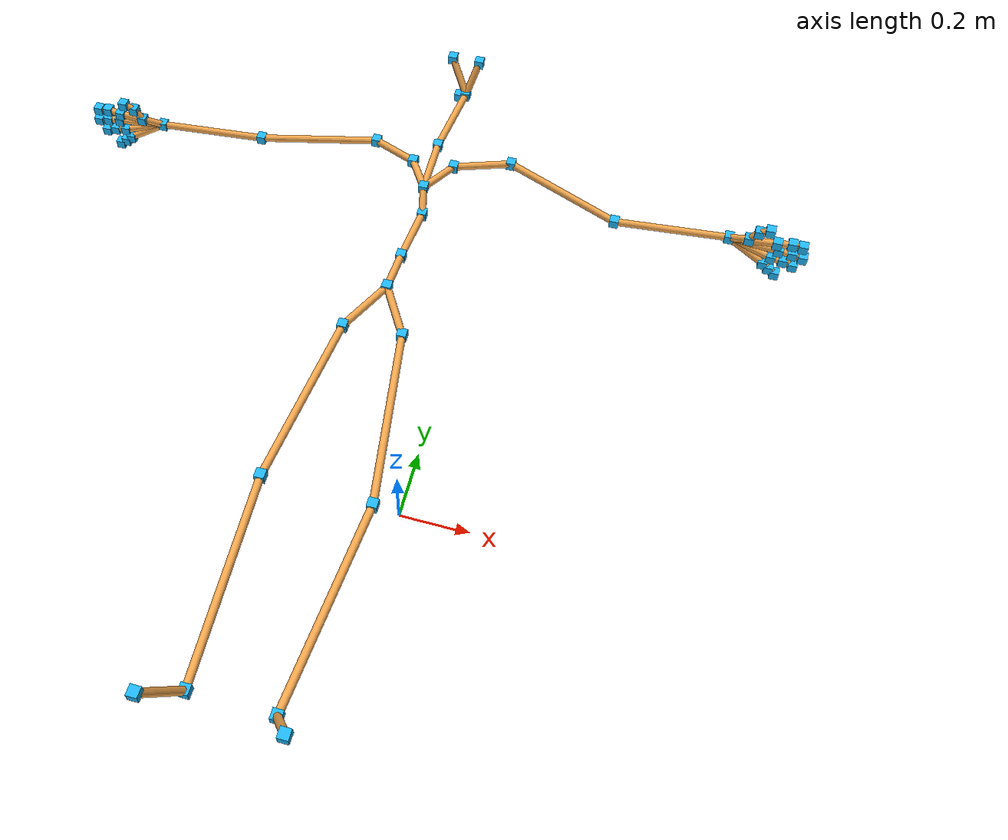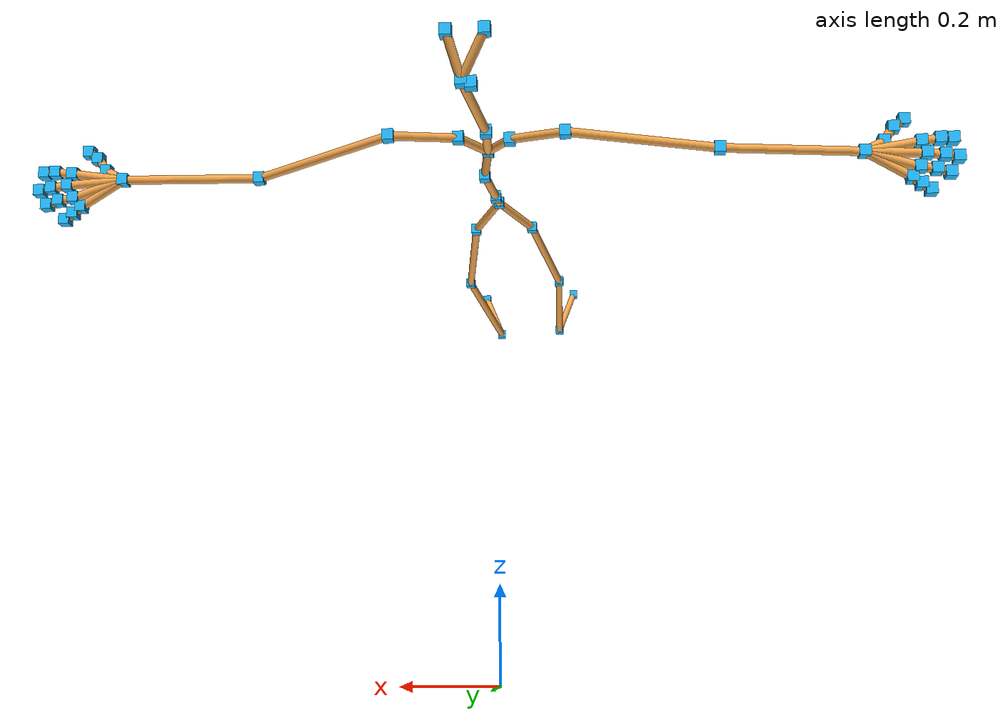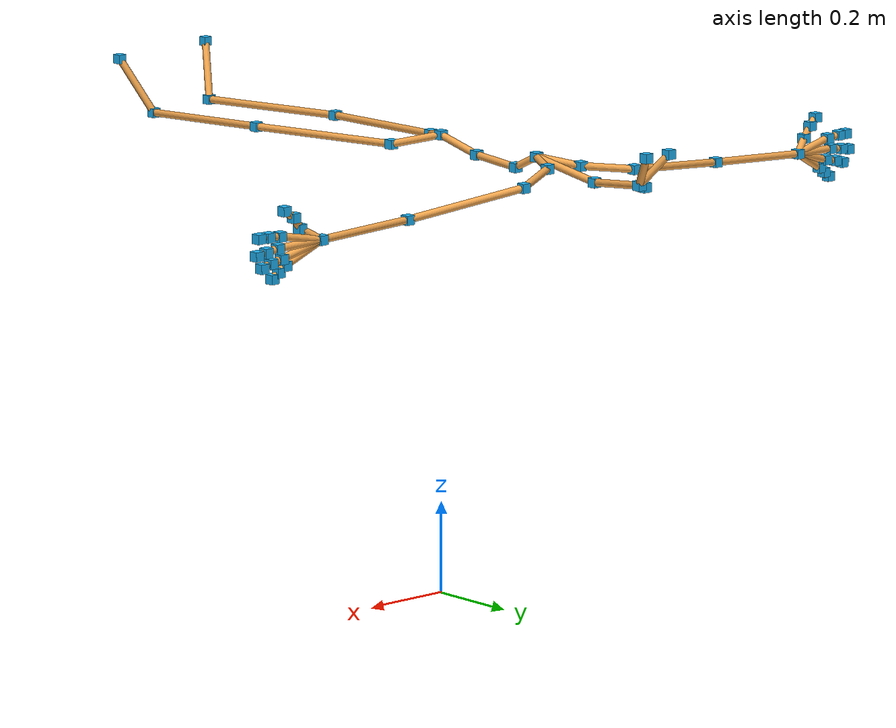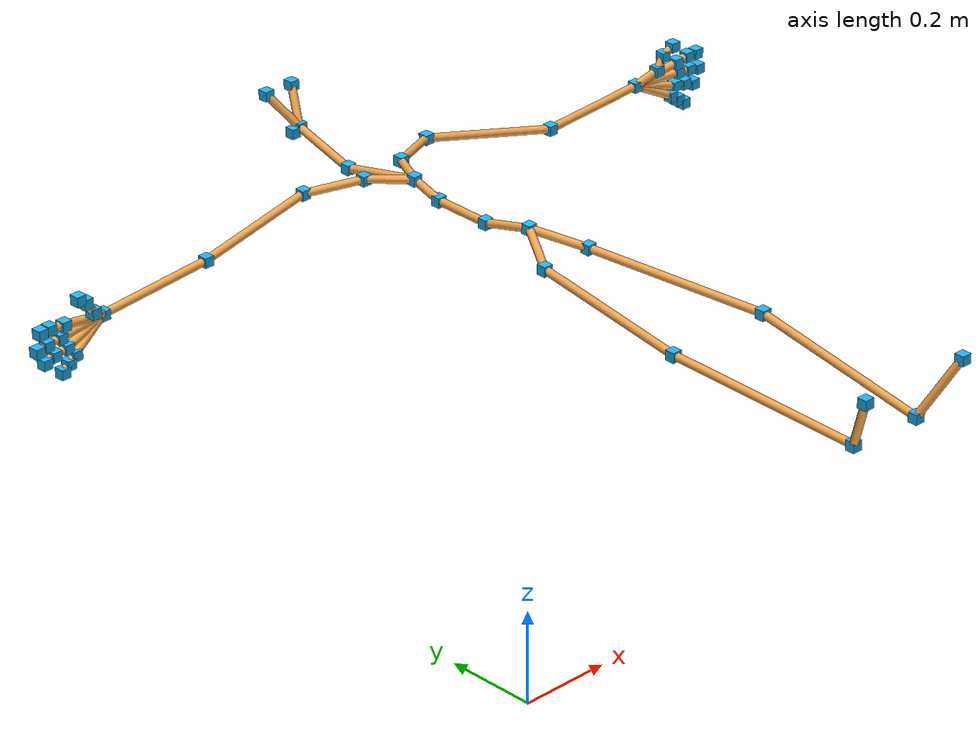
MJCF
<?xml version="1.0" encoding="UTF-8"?>
<mujoco model="smplx_neutral_skeleton_33dof">
  <compiler angle="radian" coordinate="local"/>
  <option timestep="0.002" gravity="0 0 -9.81"/>
  <default>
    <joint damping="1.0" armature="0.01" limited="false"/>
    <geom contype="0" conaffinity="0"/>
  </default>
  <worldbody>
    <body name="pelvis" pos="0 0 1">
      <freejoint name="root_free"/>
      <geom name="pelvis_joint" type="box" size="0.010 0.010 0.010" rgba="0.12 0.70 0.95 1"/>
      <geom name="bone_pelvis_l_hip" type="capsule" fromto="0 0 0 0.058189 -0.092763 -0.026001" size="0.008" rgba="0.95 0.65 0.30 1"/>
      <body name="l_hip" pos="0.058189 -0.092763 -0.026001">
        <joint name="l_hip_ball" type="ball"/>
        <geom name="l_hip_joint" type="box" size="0.010 0.010 0.010" rgba="0.12 0.70 0.95 1"/>
        <geom name="bone_l_hip_l_knee" type="capsule" fromto="0 0 0 0.054695 -0.378753 -0.009396" size="0.008" rgba="0.95 0.65 0.30 1"/>
        <body name="l_knee" pos="0.054695 -0.378753 -0.009396">
          <joint name="l_knee_hinge" type="hinge" axis="1 0 0" limited="false"/>
          <geom name="l_knee_joint" type="box" size="0.010 0.010 0.010" rgba="0.12 0.70 0.95 1"/>
          <geom name="bone_l_knee_l_ankle" type="capsule" fromto="0 0 0 -0.043453 -0.403060 -0.031876" size="0.008" rgba="0.95 0.65 0.30 1"/>
          <body name="l_ankle" pos="-0.043453 -0.403060 -0.031876">
            <joint name="l_ankle_hinge" type="hinge" axis="1 0 0" limited="false"/>
            <geom name="l_ankle_joint" type="box" size="0.010 0.010 0.010" rgba="0.12 0.70 0.95 1"/>
            <geom name="bone_l_ankle_l_foot" type="capsule" fromto="0 0 0 0.047257 -0.057997 0.118216" size="0.008" rgba="0.95 0.65 0.30 1"/>
            <body name="l_foot" pos="0.047257 -0.057997 0.118216">
              <geom name="l_foot_joint" type="box" size="0.010 0.010 0.010" rgba="0.12 0.70 0.95 1"/>
            </body>
          </body>
        </body>
      </body>
      <geom name="bone_pelvis_r_hip" type="capsule" fromto="0 0 0 -0.063267 -0.103908 -0.021250" size="0.008" rgba="0.95 0.65 0.30 1"/>
      <body name="r_hip" pos="-0.063267 -0.103908 -0.021250">
        <joint name="r_hip_ball" type="ball"/>
        <geom name="r_hip_joint" type="box" size="0.010 0.010 0.010" rgba="0.12 0.70 0.95 1"/>
        <geom name="bone_r_hip_r_knee" type="capsule" fromto="0 0 0 -0.044210 -0.362380 -0.016824" size="0.008" rgba="0.95 0.65 0.30 1"/>
        <body name="r_knee" pos="-0.044210 -0.362380 -0.016824">
          <joint name="r_knee_hinge" type="hinge" axis="1 0 0" limited="false"/>
          <geom name="r_knee_joint" type="box" size="0.010 0.010 0.010" rgba="0.12 0.70 0.95 1"/>
          <geom name="bone_r_knee_r_ankle" type="capsule" fromto="0 0 0 0.015417 -0.410728 -0.020192" size="0.008" rgba="0.95 0.65 0.30 1"/>
          <body name="r_ankle" pos="0.015417 -0.410728 -0.020192">
            <joint name="r_ankle_hinge" type="hinge" axis="1 0 0" limited="false"/>
            <geom name="r_ankle_joint" type="box" size="0.010 0.010 0.010" rgba="0.12 0.70 0.95 1"/>
            <geom name="bone_r_ankle_r_foot" type="capsule" fromto="0 0 0 -0.038812 -0.058329 0.119049" size="0.008" rgba="0.95 0.65 0.30 1"/>
            <body name="r_foot" pos="-0.038812 -0.058329 0.119049">
              <geom name="r_foot_joint" type="box" size="0.010 0.010 0.010" rgba="0.12 0.70 0.95 1"/>
            </body>
          </body>
        </body>
      </body>
      <geom name="bone_pelvis_spine1" type="capsule" fromto="0 0 0 -0.002763 0.109891 -0.027618" size="0.008" rgba="0.95 0.65 0.30 1"/>
      <body name="spine1" pos="-0.002763 0.109891 -0.027618">
        <joint name="spine1_ball" type="ball"/>
        <geom name="spine1_joint" type="box" size="0.010 0.010 0.010" rgba="0.12 0.70 0.95 1"/>
        <geom name="bone_spine1_spine2" type="capsule" fromto="0 0 0 0.009448 0.131853 -0.005940" size="0.008" rgba="0.95 0.65 0.30 1"/>
        <body name="spine2" pos="0.009448 0.131853 -0.005940">
          <joint name="spine2_ball" type="ball"/>
          <geom name="spine2_joint" type="box" size="0.010 0.010 0.010" rgba="0.12 0.70 0.95 1"/>
          <geom name="bone_spine2_spine3" type="capsule" fromto="0 0 0 -0.011330 0.052235 0.028447" size="0.008" rgba="0.95 0.65 0.30 1"/>
          <body name="spine3" pos="-0.011330 0.052235 0.028447">
            <geom name="spine3_joint" type="box" size="0.010 0.010 0.010" rgba="0.12 0.70 0.95 1"/>
            <geom name="bone_spine3_neck" type="capsule" fromto="0 0 0 -0.012164 0.165167 -0.031615" size="0.008" rgba="0.95 0.65 0.30 1"/>
            <body name="neck" pos="-0.012164 0.165167 -0.031615">
              <joint name="neck_ball" type="ball"/>
              <geom name="neck_joint" type="box" size="0.010 0.010 0.010" rgba="0.12 0.70 0.95 1"/>
              <geom name="bone_neck_head" type="capsule" fromto="0 0 0 0.024783 0.160452 0.020737" size="0.008" rgba="0.95 0.65 0.30 1"/>
              <body name="head" pos="0.024783 0.160452 0.020737">
                <geom name="head_joint" type="box" size="0.010 0.010 0.010" rgba="0.12 0.70 0.95 1"/>
                <geom name="bone_head_jaw" type="capsule" fromto="0 0 0 -0.015765 -0.000520 -0.005639" size="0.008" rgba="0.95 0.65 0.30 1"/>
                <body name="jaw" pos="-0.015765 -0.000520 -0.005639">
                  <geom name="jaw_joint" type="box" size="0.010 0.010 0.010" rgba="0.12 0.70 0.95 1"/>
                </body>
                <geom name="bone_head_l_eye" type="capsule" fromto="0 0 0 0.020502 0.042642 0.066147" size="0.008" rgba="0.95 0.65 0.30 1"/>
                <body name="l_eye" pos="0.020502 0.042642 0.066147">
                  <geom name="l_eye_joint" type="box" size="0.010 0.010 0.010" rgba="0.12 0.70 0.95 1"/>
                </body>
                <geom name="bone_head_r_eye" type="capsule" fromto="0 0 0 -0.042697 0.042642 0.066147" size="0.008" rgba="0.95 0.65 0.30 1"/>
                <body name="r_eye" pos="-0.042697 0.042642 0.066147">
                  <geom name="r_eye_joint" type="box" size="0.010 0.010 0.010" rgba="0.12 0.70 0.95 1"/>
                </body>
              </body>
            </body>
            <geom name="bone_spine3_l_collar" type="capsule" fromto="0 0 0 0.046364 0.084944 -0.007220" size="0.008" rgba="0.95 0.65 0.30 1"/>
            <body name="l_collar" pos="0.046364 0.084944 -0.007220">
              <geom name="l_collar_joint" type="box" size="0.010 0.010 0.010" rgba="0.12 0.70 0.95 1"/>
              <geom name="bone_l_collar_l_shoulder" type="capsule" fromto="0 0 0 0.119239 0.057728 -0.015461" size="0.008" rgba="0.95 0.65 0.30 1"/>
              <body name="l_shoulder" pos="0.119239 0.057728 -0.015461">
                <joint name="l_shoulder_ball" type="ball"/>
                <geom name="l_shoulder_joint" type="box" size="0.010 0.010 0.010" rgba="0.12 0.70 0.95 1"/>
                <geom name="bone_l_shoulder_l_elbow" type="capsule" fromto="0 0 0 0.254123 -0.072151 -0.042459" size="0.008" rgba="0.95 0.65 0.30 1"/>
                <body name="l_elbow" pos="0.254123 -0.072151 -0.042459">
                  <joint name="l_elbow_hinge" type="hinge" axis="0 1 0" limited="false"/>
                  <geom name="l_elbow_joint" type="box" size="0.010 0.010 0.010" rgba="0.12 0.70 0.95 1"/>
                  <geom name="bone_l_elbow_l_wrist" type="capsule" fromto="0 0 0 0.251987 0.023221 -0.002472" size="0.008" rgba="0.95 0.65 0.30 1"/>
                  <body name="l_wrist" pos="0.251987 0.023221 -0.002472">
                    <geom name="l_wrist_joint" type="box" size="0.010 0.010 0.010" rgba="0.12 0.70 0.95 1"/>
                    <geom name="bone_l_wrist_l_index1" type="capsule" fromto="0 0 0 0.101902 -0.008688 0.019351" size="0.008" rgba="0.95 0.65 0.30 1"/>
                    <body name="l_index1" pos="0.101902 -0.008688 0.019351">
                      <geom name="l_index1_joint" type="box" size="0.010 0.010 0.010" rgba="0.12 0.70 0.95 1"/>
                      <geom name="bone_l_index1_l_index2" type="capsule" fromto="0 0 0 0.031948 0.002218 0.003010" size="0.008" rgba="0.95 0.65 0.30 1"/>
                      <body name="l_index2" pos="0.031948 0.002218 0.003010">
                        <geom name="l_index2_joint" type="box" size="0.010 0.010 0.010" rgba="0.12 0.70 0.95 1"/>
                        <geom name="bone_l_index2_l_index3" type="capsule" fromto="0 0 0 0.022545 -0.002350 0.000055" size="0.008" rgba="0.95 0.65 0.30 1"/>
                        <body name="l_index3" pos="0.022545 -0.002350 0.000055">
                          <geom name="l_index3_joint" type="box" size="0.010 0.010 0.010" rgba="0.12 0.70 0.95 1"/>
                        </body>
                      </body>
                    </body>
                    <geom name="bone_l_wrist_l_middle1" type="capsule" fromto="0 0 0 0.109398 -0.006328 -0.003981" size="0.008" rgba="0.95 0.65 0.30 1"/>
                    <body name="l_middle1" pos="0.109398 -0.006328 -0.003981">
                      <geom name="l_middle1_joint" type="box" size="0.010 0.010 0.010" rgba="0.12 0.70 0.95 1"/>
                      <geom name="bone_l_middle1_l_middle2" type="capsule" fromto="0 0 0 0.030611 0.000807 -0.004023" size="0.008" rgba="0.95 0.65 0.30 1"/>
                      <body name="l_middle2" pos="0.030611 0.000807 -0.004023">
                        <geom name="l_middle2_joint" type="box" size="0.010 0.010 0.010" rgba="0.12 0.70 0.95 1"/>
                        <geom name="bone_l_middle2_l_middle3" type="capsule" fromto="0 0 0 0.023515 -0.002009 -0.004114" size="0.008" rgba="0.95 0.65 0.30 1"/>
                        <body name="l_middle3" pos="0.023515 -0.002009 -0.004114">
                          <geom name="l_middle3_joint" type="box" size="0.010 0.010 0.010" rgba="0.12 0.70 0.95 1"/>
                        </body>
                      </body>
                    </body>
                    <geom name="bone_l_wrist_l_pinky1" type="capsule" fromto="0 0 0 0.084047 -0.014539 -0.043750" size="0.008" rgba="0.95 0.65 0.30 1"/>
                    <body name="l_pinky1" pos="0.084047 -0.014539 -0.043750">
                      <geom name="l_pinky1_joint" type="box" size="0.010 0.010 0.010" rgba="0.12 0.70 0.95 1"/>
                      <geom name="bone_l_pinky1_l_pinky2" type="capsule" fromto="0 0 0 0.015471 -0.001132 -0.011999" size="0.008" rgba="0.95 0.65 0.30 1"/>
                      <body name="l_pinky2" pos="0.015471 -0.001132 -0.011999">
                        <geom name="l_pinky2_joint" type="box" size="0.010 0.010 0.010" rgba="0.12 0.70 0.95 1"/>
                        <geom name="bone_l_pinky2_l_pinky3" type="capsule" fromto="0 0 0 0.015533 -0.001665 -0.011217" size="0.008" rgba="0.95 0.65 0.30 1"/>
                        <body name="l_pinky3" pos="0.015533 -0.001665 -0.011217">
                          <geom name="l_pinky3_joint" type="box" size="0.010 0.010 0.010" rgba="0.12 0.70 0.95 1"/>
                        </body>
                      </body>
                    </body>
                    <geom name="bone_l_wrist_l_ring1" type="capsule" fromto="0 0 0 0.097444 -0.009268 -0.027345" size="0.008" rgba="0.95 0.65 0.30 1"/>
                    <body name="l_ring1" pos="0.097444 -0.009268 -0.027345">
                      <geom name="l_ring1_joint" type="box" size="0.010 0.010 0.010" rgba="0.12 0.70 0.95 1"/>
                      <geom name="bone_l_ring1_l_ring2" type="capsule" fromto="0 0 0 0.028047 0.001485 -0.005266" size="0.008" rgba="0.95 0.65 0.30 1"/>
                      <body name="l_ring2" pos="0.028047 0.001485 -0.005266">
                        <geom name="l_ring2_joint" type="box" size="0.010 0.010 0.010" rgba="0.12 0.70 0.95 1"/>
                        <geom name="bone_l_ring2_l_ring3" type="capsule" fromto="0 0 0 0.022822 -0.001458 -0.007094" size="0.008" rgba="0.95 0.65 0.30 1"/>
                        <body name="l_ring3" pos="0.022822 -0.001458 -0.007094">
                          <geom name="l_ring3_joint" type="box" size="0.010 0.010 0.010" rgba="0.12 0.70 0.95 1"/>
                        </body>
                      </body>
                    </body>
                    <geom name="bone_l_wrist_l_thumb1" type="capsule" fromto="0 0 0 0.040636 -0.017977 0.025611" size="0.008" rgba="0.95 0.65 0.30 1"/>
                    <body name="l_thumb1" pos="0.040636 -0.017977 0.025611">
                      <geom name="l_thumb1_joint" type="box" size="0.010 0.010 0.010" rgba="0.12 0.70 0.95 1"/>
                      <geom name="bone_l_thumb1_l_thumb2" type="capsule" fromto="0 0 0 0.017016 0.000976 0.024978" size="0.008" rgba="0.95 0.65 0.30 1"/>
                      <body name="l_thumb2" pos="0.017016 0.000976 0.024978">
                        <geom name="l_thumb2_joint" type="box" size="0.010 0.010 0.010" rgba="0.12 0.70 0.95 1"/>
                        <geom name="bone_l_thumb2_l_thumb3" type="capsule" fromto="0 0 0 0.020523 -0.005160 0.015523" size="0.008" rgba="0.95 0.65 0.30 1"/>
                        <body name="l_thumb3" pos="0.020523 -0.005160 0.015523">
                          <geom name="l_thumb3_joint" type="box" size="0.010 0.010 0.010" rgba="0.12 0.70 0.95 1"/>
                        </body>
                      </body>
                    </body>
                  </body>
                </body>
              </body>
            </body>
            <geom name="bone_spine3_r_collar" type="capsule" fromto="0 0 0 -0.047695 0.084339 -0.013400" size="0.008" rgba="0.95 0.65 0.30 1"/>
            <body name="r_collar" pos="-0.047695 0.084339 -0.013400">
              <geom name="r_collar_joint" type="box" size="0.010 0.010 0.010" rgba="0.12 0.70 0.95 1"/>
              <geom name="bone_r_collar_r_shoulder" type="capsule" fromto="0 0 0 -0.102578 0.053524 -0.012669" size="0.008" rgba="0.95 0.65 0.30 1"/>
              <body name="r_shoulder" pos="-0.102578 0.053524 -0.012669">
                <joint name="r_shoulder_ball" type="ball"/>
                <geom name="r_shoulder_joint" type="box" size="0.010 0.010 0.010" rgba="0.12 0.70 0.95 1"/>
                <geom name="bone_r_shoulder_r_elbow" type="capsule" fromto="0 0 0 -0.271150 -0.036492 -0.026467" size="0.008" rgba="0.95 0.65 0.30 1"/>
                <body name="r_elbow" pos="-0.271150 -0.036492 -0.026467">
                  <joint name="r_elbow_hinge" type="hinge" axis="0 1 0" limited="false"/>
                  <geom name="r_elbow_joint" type="box" size="0.010 0.010 0.010" rgba="0.12 0.70 0.95 1"/>
                  <geom name="bone_r_elbow_r_wrist" type="capsule" fromto="0 0 0 -0.249267 -0.004533 -0.015325" size="0.008" rgba="0.95 0.65 0.30 1"/>
                  <body name="r_wrist" pos="-0.249267 -0.004533 -0.015325">
                    <geom name="r_wrist_joint" type="box" size="0.010 0.010 0.010" rgba="0.12 0.70 0.95 1"/>
                    <geom name="bone_r_wrist_r_index1" type="capsule" fromto="0 0 0 -0.099881 -0.011783 0.019600" size="0.008" rgba="0.95 0.65 0.30 1"/>
                    <body name="r_index1" pos="-0.099881 -0.011783 0.019600">
                      <geom name="r_index1_joint" type="box" size="0.010 0.010 0.010" rgba="0.12 0.70 0.95 1"/>
                      <geom name="bone_r_index1_r_index2" type="capsule" fromto="0 0 0 -0.031948 0.002218 0.003011" size="0.008" rgba="0.95 0.65 0.30 1"/>
                      <body name="r_index2" pos="-0.031948 0.002218 0.003011">
                        <geom name="r_index2_joint" type="box" size="0.010 0.010 0.010" rgba="0.12 0.70 0.95 1"/>
                        <geom name="bone_r_index2_r_index3" type="capsule" fromto="0 0 0 -0.022545 -0.002349 0.000055" size="0.008" rgba="0.95 0.65 0.30 1"/>
                        <body name="r_index3" pos="-0.022545 -0.002349 0.000055">
                          <geom name="r_index3_joint" type="box" size="0.010 0.010 0.010" rgba="0.12 0.70 0.95 1"/>
                        </body>
                      </body>
                    </body>
                    <geom name="bone_r_wrist_r_middle1" type="capsule" fromto="0 0 0 -0.107376 -0.009422 -0.003734" size="0.008" rgba="0.95 0.65 0.30 1"/>
                    <body name="r_middle1" pos="-0.107376 -0.009422 -0.003734">
                      <geom name="r_middle1_joint" type="box" size="0.010 0.010 0.010" rgba="0.12 0.70 0.95 1"/>
                      <geom name="bone_r_middle1_r_middle2" type="capsule" fromto="0 0 0 -0.030611 0.000807 -0.004023" size="0.008" rgba="0.95 0.65 0.30 1"/>
                      <body name="r_middle2" pos="-0.030611 0.000807 -0.004023">
                        <geom name="r_middle2_joint" type="box" size="0.010 0.010 0.010" rgba="0.12 0.70 0.95 1"/>
                        <geom name="bone_r_middle2_r_middle3" type="capsule" fromto="0 0 0 -0.023516 -0.002009 -0.004114" size="0.008" rgba="0.95 0.65 0.30 1"/>
                        <body name="r_middle3" pos="-0.023516 -0.002009 -0.004114">
                          <geom name="r_middle3_joint" type="box" size="0.010 0.010 0.010" rgba="0.12 0.70 0.95 1"/>
                        </body>
                      </body>
                    </body>
                    <geom name="bone_r_wrist_r_pinky1" type="capsule" fromto="0 0 0 -0.082027 -0.017634 -0.043503" size="0.008" rgba="0.95 0.65 0.30 1"/>
                    <body name="r_pinky1" pos="-0.082027 -0.017634 -0.043503">
                      <geom name="r_pinky1_joint" type="box" size="0.010 0.010 0.010" rgba="0.12 0.70 0.95 1"/>
                      <geom name="bone_r_pinky1_r_pinky2" type="capsule" fromto="0 0 0 -0.015471 -0.001132 -0.011999" size="0.008" rgba="0.95 0.65 0.30 1"/>
                      <body name="r_pinky2" pos="-0.015471 -0.001132 -0.011999">
                        <geom name="r_pinky2_joint" type="box" size="0.010 0.010 0.010" rgba="0.12 0.70 0.95 1"/>
                        <geom name="bone_r_pinky2_r_pinky3" type="capsule" fromto="0 0 0 -0.015533 -0.001665 -0.011216" size="0.008" rgba="0.95 0.65 0.30 1"/>
                        <body name="r_pinky3" pos="-0.015533 -0.001665 -0.011216">
                          <geom name="r_pinky3_joint" type="box" size="0.010 0.010 0.010" rgba="0.12 0.70 0.95 1"/>
                        </body>
                      </body>
                    </body>
                    <geom name="bone_r_wrist_r_ring1" type="capsule" fromto="0 0 0 -0.095423 -0.012362 -0.027099" size="0.008" rgba="0.95 0.65 0.30 1"/>
                    <body name="r_ring1" pos="-0.095423 -0.012362 -0.027099">
                      <geom name="r_ring1_joint" type="box" size="0.010 0.010 0.010" rgba="0.12 0.70 0.95 1"/>
                      <geom name="bone_r_ring1_r_ring2" type="capsule" fromto="0 0 0 -0.028047 0.001485 -0.005266" size="0.008" rgba="0.95 0.65 0.30 1"/>
                      <body name="r_ring2" pos="-0.028047 0.001485 -0.005266">
                        <geom name="r_ring2_joint" type="box" size="0.010 0.010 0.010" rgba="0.12 0.70 0.95 1"/>
                        <geom name="bone_r_ring2_r_ring3" type="capsule" fromto="0 0 0 -0.022822 -0.001459 -0.007093" size="0.008" rgba="0.95 0.65 0.30 1"/>
                        <body name="r_ring3" pos="-0.022822 -0.001459 -0.007093">
                          <geom name="r_ring3_joint" type="box" size="0.010 0.010 0.010" rgba="0.12 0.70 0.95 1"/>
                        </body>
                      </body>
                    </body>
                    <geom name="bone_r_wrist_r_thumb1" type="capsule" fromto="0 0 0 -0.038613 -0.021074 0.025861" size="0.008" rgba="0.95 0.65 0.30 1"/>
                    <body name="r_thumb1" pos="-0.038613 -0.021074 0.025861">
                      <geom name="r_thumb1_joint" type="box" size="0.010 0.010 0.010" rgba="0.12 0.70 0.95 1"/>
                      <geom name="bone_r_thumb1_r_thumb2" type="capsule" fromto="0 0 0 -0.017015 0.000976 0.024978" size="0.008" rgba="0.95 0.65 0.30 1"/>
                      <body name="r_thumb2" pos="-0.017015 0.000976 0.024978">
                        <geom name="r_thumb2_joint" type="box" size="0.010 0.010 0.010" rgba="0.12 0.70 0.95 1"/>
                        <geom name="bone_r_thumb2_r_thumb3" type="capsule" fromto="0 0 0 -0.020525 -0.005157 0.015522" size="0.008" rgba="0.95 0.65 0.30 1"/>
                        <body name="r_thumb3" pos="-0.020525 -0.005157 0.015522">
                          <geom name="r_thumb3_joint" type="box" size="0.010 0.010 0.010" rgba="0.12 0.70 0.95 1"/>
                        </body>
                      </body>
                    </body>
                  </body>
                </body>
              </body>
            </body>
          </body>
        </body>
      </body>
    </body>
  </worldbody>
</mujoco>
